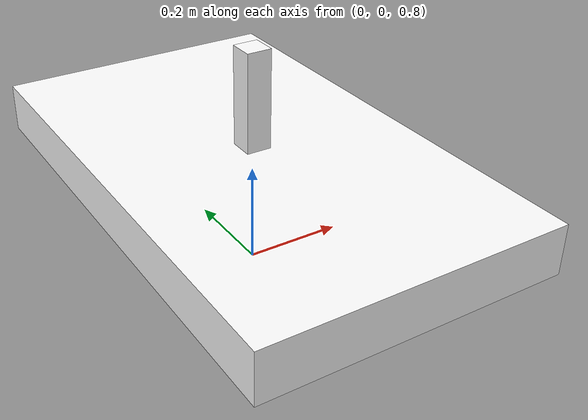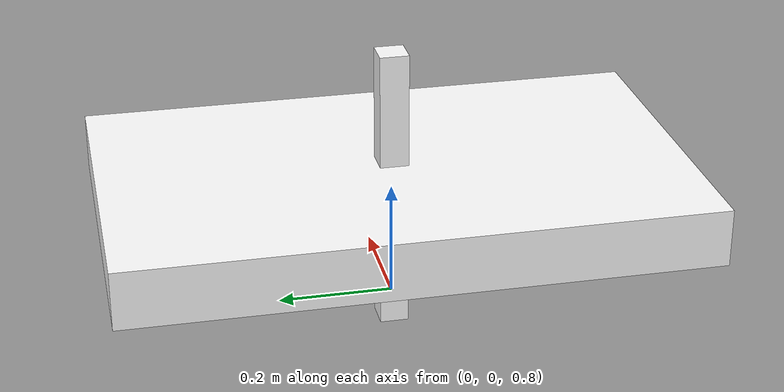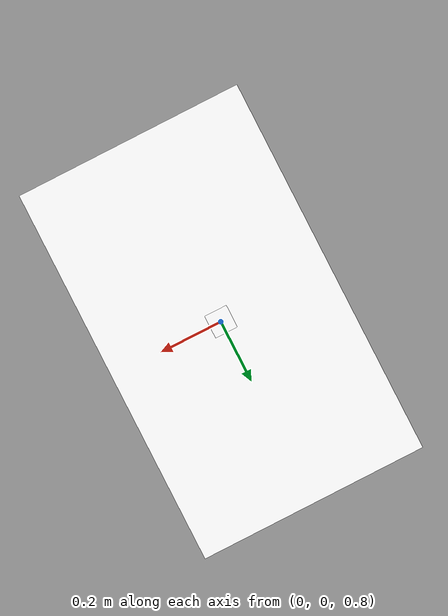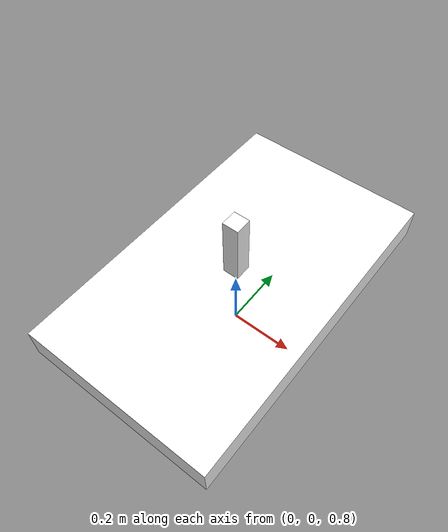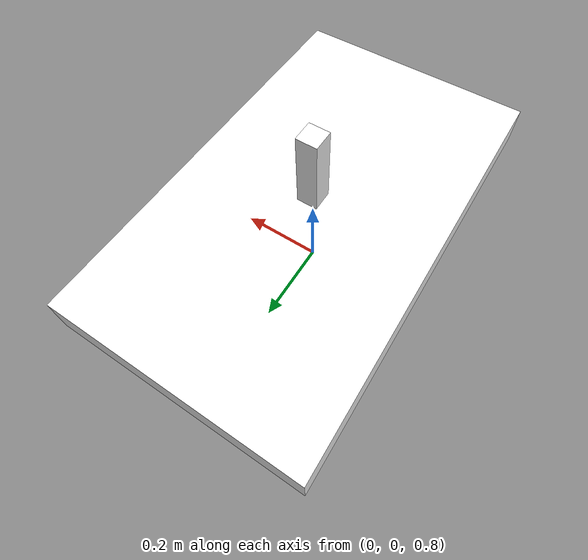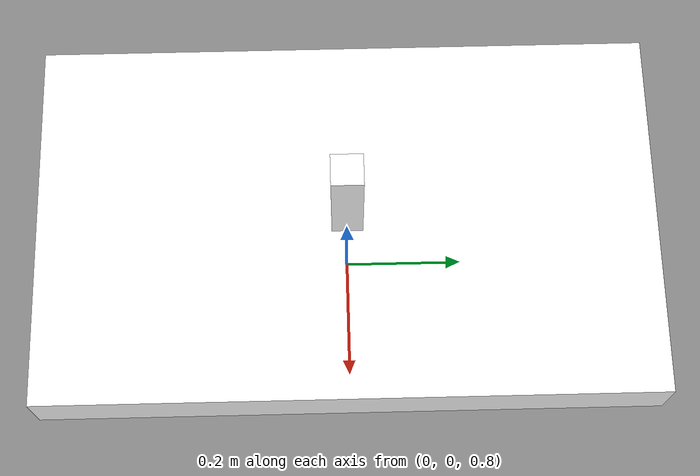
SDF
<sdf version="1.7">
  <world name="default">
    <gravity>0 0 -9.8 </gravity>

  <model name="basic_table_little_dog">
    <pose>0 0 1 0 0 0</pose>
    <link name="top">
      <pose>0 0 0 0 0 0</pose>
        <inertial>
          <mass>20.0</mass>
          <inertia>
            <ixx>0.005833</ixx>
            <ixy>0.0</ixy>
            <ixz>0.0</ixz>
            <iyy>0.005833</iyy>
            <iyz>0.0</iyz>
            <izz>0.005</izz>
          </inertia>
        </inertial>
        <collision name="collision">
          <geometry>
            <box>
              <size>.60 1.0 .1</size>
            </box>
          </geometry>

        </collision>
        <visual name="visual">
          <geometry>
            <box>
              <size>.6 1.0 .1</size>
            </box>
          </geometry>
          <material>
            <diffuse>1.0 1.0 1.0 1.0</diffuse>
          </material>
        </visual>
    </link>
        <link name="lf_leg">
          <pose>0 0 0 0 0 0</pose>
            <inertial>
              <mass>1.0</mass>
              <inertia>
                <ixx>0.005833</ixx>
                <ixy>0.0</ixy>
                <ixz>0.0</ixz>
                <iyy>0.005833</iyy>
                <iyz>0.0</iyz>
                <izz>0.005</izz>
              </inertia>
            </inertial>
            <collision name="collision">
              <geometry>
                <box>
                  <size>.05 .05 .5</size>
                </box>
              </geometry>
            </collision>
            <visual name="visual">

              <geometry>
                <box>
                  <size>.05 .05 .5</size>
                </box>
              </geometry>
              <material>
                <diffuse>1.0 1.0 1.0 1.0</diffuse>
              </material>
            </visual>
      </link>

    <joint name="lf_joint" type="revolute">
      <parent>top</parent>
      <child>lf_leg</child>

      <axis>
        <xyz>1 0 0</xyz>
        <limit>
          <lower>-2</lower>
          <upper>2</upper>
        </limit>
      </axis>
        <pose relative_to="top">
        0 0 -3 0 0 0
      </pose>

    </joint>

  </model>
  </world>

</sdf>
